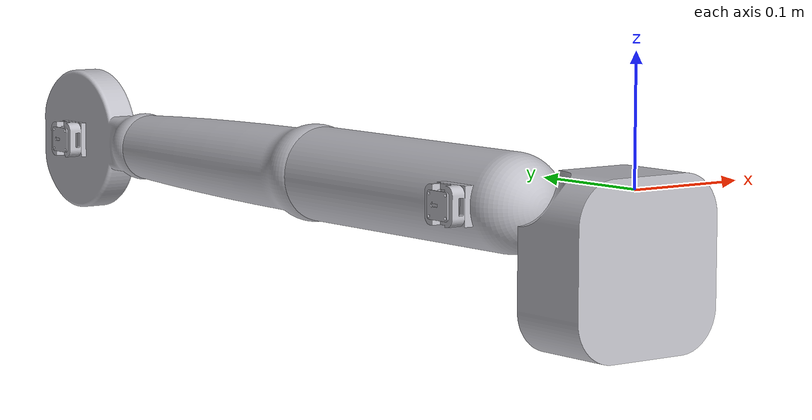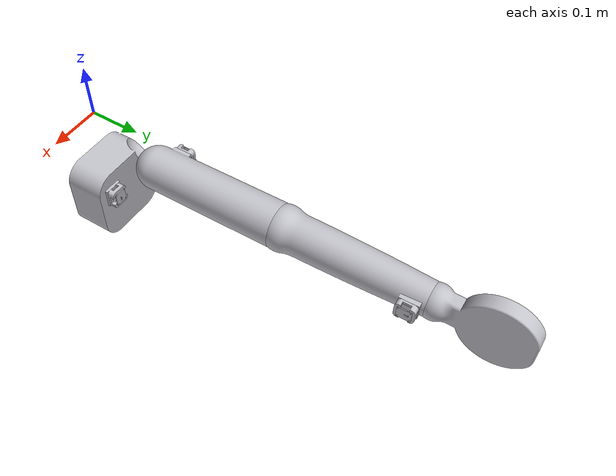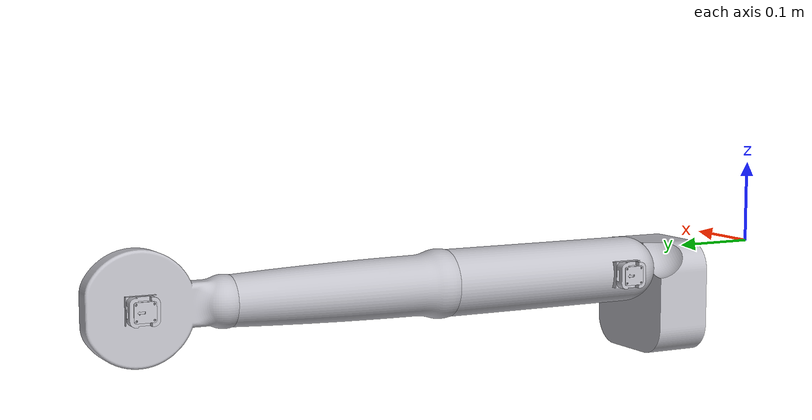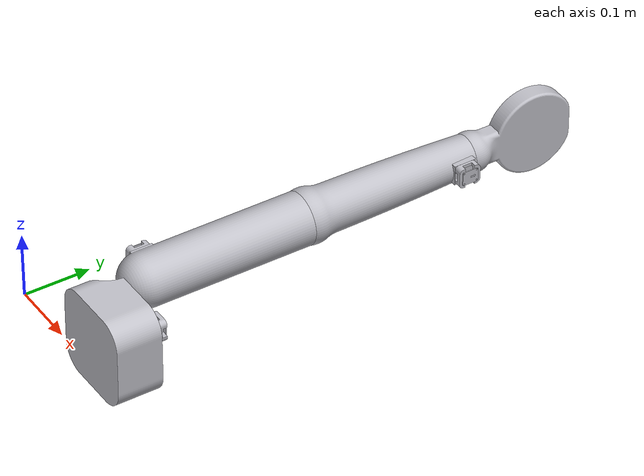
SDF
<sdf version='1.11'>
  <model name='teleoparm'>
    <link name='base_link'>
      <inertial>
        <pose>0.071323104534387269 0.095004139824496209 -0.070700813058979323 0 0 0</pose>
        <mass>10.10063397573283</mass>
        <inertia>
          <ixx>0.01912830571917995</ixx>
          <ixy>-0.00036394579887961959</ixy>
          <ixz>-0.00060401240405721923</ixz>
          <iyy>0.029838568641134679</iyy>
          <iyz>9.4877679500920964e-05</iyz>
          <izz>0.019184964737869761</izz>
        </inertia>
      </inertial>
      <collision name='base_link_collision'>
        <pose>0 0 0 0 0 0</pose>
        <geometry>
          <mesh>
            <scale>0.001 0.001 0.001</scale>
            <uri>package://teleoparm_description/meshes/base_link.stl</uri>
          </mesh>
        </geometry>
        <surface>
          <contact>
            <ode/>
          </contact>
          <friction>
            <ode>
              <mu>0.20000000000000001</mu>
              <mu2>0.20000000000000001</mu2>
            </ode>
          </friction>
        </surface>
      </collision>
      <collision name='base_link_fixed_joint_lump__imumount_v2_1_collision_1'>
        <pose>0 0 0 0 0 0</pose>
        <geometry>
          <mesh>
            <scale>0.001 0.001 0.001</scale>
            <uri>package://teleoparm_description/meshes/imumount_v2_1.stl</uri>
          </mesh>
        </geometry>
        <surface>
          <contact>
            <ode/>
          </contact>
          <friction>
            <ode>
              <mu>0.20000000000000001</mu>
              <mu2>0.20000000000000001</mu2>
            </ode>
          </friction>
        </surface>
      </collision>
      <collision name='base_link_fixed_joint_lump__chestimu_1_collision_2'>
        <pose>0 2.775557561562891e-17 0 0 0 0</pose>
        <geometry>
          <mesh>
            <scale>0.001 0.001 0.001</scale>
            <uri>package://teleoparm_description/meshes/chestimu_1.stl</uri>
          </mesh>
        </geometry>
        <surface>
          <contact>
            <ode/>
          </contact>
          <friction>
            <ode>
              <mu>0.20000000000000001</mu>
              <mu2>0.20000000000000001</mu2>
            </ode>
          </friction>
        </surface>
      </collision>
      <visual name='base_link_visual'>
        <pose>0 0 0 0 0 0</pose>
        <geometry>
          <mesh>
            <scale>0.001 0.001 0.001</scale>
            <uri>package://teleoparm_description/meshes/base_link.stl</uri>
          </mesh>
        </geometry>
        <material>
          <script>
            <name>Gazebo/Silver</name>
            <uri>file://media/materials/scripts/gazebo.material</uri>
          </script>
          <diffuse>0.875 0.875 0.875 1</diffuse>
          <ambient>0.875 0.875 0.875 1</ambient>
        </material>
      </visual>
      <visual name='base_link_fixed_joint_lump__imumount_v2_1_visual_1'>
        <pose>0 0 0 0 0 0</pose>
        <geometry>
          <mesh>
            <scale>0.001 0.001 0.001</scale>
            <uri>package://teleoparm_description/meshes/imumount_v2_1.stl</uri>
          </mesh>
        </geometry>
        <material>
          <script>
            <name>Gazebo/Silver</name>
            <uri>file://media/materials/scripts/gazebo.material</uri>
          </script>
          <diffuse>0.875 0.875 0.875 1</diffuse>
          <ambient>0.875 0.875 0.875 1</ambient>
        </material>
      </visual>
      <visual name='base_link_fixed_joint_lump__chestimu_1_visual_2'>
        <pose>0 2.775557561562891e-17 0 0 0 0</pose>
        <geometry>
          <mesh>
            <scale>0.001 0.001 0.001</scale>
            <uri>package://teleoparm_description/meshes/chestimu_1.stl</uri>
          </mesh>
        </geometry>
        <material>
          <script>
            <name>Gazebo/Silver</name>
            <uri>file://media/materials/scripts/gazebo.material</uri>
          </script>
          <diffuse>0.875 0.875 0.875 1</diffuse>
          <ambient>0.875 0.875 0.875 1</ambient>
        </material>
      </visual>
      <self_collide>true</self_collide>
      <gravity>true</gravity>
      <self_collide>true</self_collide>
      <self_collide>true</self_collide>
    </link>
    <joint name='shldrevolute_roll' type='revolute'>
      <pose relative_to='base_link'>0.026568000000000001 0.11627999999999999 -0.026568000000000001 0 0 0</pose>
      <parent>base_link</parent>
      <child>shldr_virtual_1</child>
      <axis>
        <xyz>1 0 0</xyz>
        <limit>
          <lower>-inf</lower>
          <upper>inf</upper>
        </limit>
        <dynamics>
          <spring_reference>0</spring_reference>
          <spring_stiffness>0</spring_stiffness>
        </dynamics>
      </axis>
    </joint>
    <link name='shldr_virtual_1'>
      <pose relative_to='shldrevolute_roll'>0 0 0 0 0 0</pose>
      <inertial>
        <pose>0 0 0 0 0 0</pose>
        <mass>0.001</mass>
        <inertia>
          <ixx>0.0001</ixx>
          <ixy>0</ixy>
          <ixz>0</ixz>
          <iyy>0.0001</iyy>
          <iyz>0</iyz>
          <izz>0.0001</izz>
        </inertia>
      </inertial>
    </link>
    <joint name='shldrevolute_pitch' type='revolute'>
      <pose relative_to='shldr_virtual_1'>0 0 0 0 0 0</pose>
      <parent>shldr_virtual_1</parent>
      <child>shldr_virtual_2</child>
      <axis>
        <xyz>0 1 0</xyz>
        <limit>
          <lower>-inf</lower>
          <upper>inf</upper>
        </limit>
        <dynamics>
          <spring_reference>0</spring_reference>
          <spring_stiffness>0</spring_stiffness>
        </dynamics>
      </axis>
    </joint>
    <link name='shldr_virtual_2'>
      <pose relative_to='shldrevolute_pitch'>0 0 0 0 0 0</pose>
      <inertial>
        <pose>0 0 0 0 0 0</pose>
        <mass>0.001</mass>
        <inertia>
          <ixx>0.0001</ixx>
          <ixy>0</ixy>
          <ixz>0</ixz>
          <iyy>0.0001</iyy>
          <iyz>0</iyz>
          <izz>0.0001</izz>
        </inertia>
      </inertial>
    </link>
    <joint name='shldrevolute_yaw' type='revolute'>
      <pose relative_to='shldr_virtual_2'>0 0 0 0 0 0</pose>
      <parent>shldr_virtual_2</parent>
      <child>arm_1</child>
      <axis>
        <xyz>0 0 1</xyz>
        <limit>
          <lower>-inf</lower>
          <upper>inf</upper>
        </limit>
        <dynamics>
          <spring_reference>0</spring_reference>
          <spring_stiffness>0</spring_stiffness>
        </dynamics>
      </axis>
    </joint>
    <link name='arm_1'>
      <pose relative_to='shldrevolute_yaw'>0 0 0 0 0 0</pose>
      <inertial>
        <pose>-0.09399375584331135 0.048031150541781038 0.09399415196704311 0 0 0</pose>
        <mass>10.27422537981764</mass>
        <inertia>
          <ixx>0.03850110786075768</ixx>
          <ixy>0.01240494855191491</ixy>
          <ixz>0.023591778077546349</ixz>
          <iyy>0.055319556181065398</iyy>
          <iyz>-0.0124048605543684</iyz>
          <izz>0.038501202261441853</izz>
        </inertia>
      </inertial>
      <collision name='arm_1_collision'>
        <pose>-0.026568000000000001 -0.11627999999999999 0.026568000000000001 0 0 0</pose>
        <geometry>
          <mesh>
            <scale>0.001 0.001 0.001</scale>
            <uri>package://teleoparm_description/meshes/arm_1.stl</uri>
          </mesh>
        </geometry>
        <surface>
          <contact>
            <ode/>
          </contact>
          <friction>
            <ode>
              <mu>0.20000000000000001</mu>
              <mu2>0.20000000000000001</mu2>
            </ode>
          </friction>
        </surface>
      </collision>
      <collision name='arm_1_fixed_joint_lump__imumount_v2__1__1_collision_1'>
        <pose>-0.026568000000000001 -0.11627999999999999 0.026568000000000001 0 0 0</pose>
        <geometry>
          <mesh>
            <scale>0.001 0.001 0.001</scale>
            <uri>package://teleoparm_description/meshes/imumount_v2__1__1.stl</uri>
          </mesh>
        </geometry>
        <surface>
          <contact>
            <ode/>
          </contact>
          <friction>
            <ode>
              <mu>0.20000000000000001</mu>
              <mu2>0.20000000000000001</mu2>
            </ode>
          </friction>
        </surface>
      </collision>
      <collision name='arm_1_fixed_joint_lump__armimu_1_collision_2'>
        <pose>-0.026568000000000001 -0.11627999999999999 0.026568000000000001 0 0 0</pose>
        <geometry>
          <mesh>
            <scale>0.001 0.001 0.001</scale>
            <uri>package://teleoparm_description/meshes/armimu_1.stl</uri>
          </mesh>
        </geometry>
        <surface>
          <contact>
            <ode/>
          </contact>
          <friction>
            <ode>
              <mu>0.20000000000000001</mu>
              <mu2>0.20000000000000001</mu2>
            </ode>
          </friction>
        </surface>
      </collision>
      <visual name='arm_1_visual'>
        <pose>-0.026568000000000001 -0.11627999999999999 0.026568000000000001 0 0 0</pose>
        <geometry>
          <mesh>
            <scale>0.001 0.001 0.001</scale>
            <uri>package://teleoparm_description/meshes/arm_1.stl</uri>
          </mesh>
        </geometry>
        <material>
          <script>
            <name>Gazebo/Silver</name>
            <uri>file://media/materials/scripts/gazebo.material</uri>
          </script>
          <diffuse>0.875 0.875 0.875 1</diffuse>
          <ambient>0.875 0.875 0.875 1</ambient>
        </material>
      </visual>
      <visual name='arm_1_fixed_joint_lump__imumount_v2__1__1_visual_1'>
        <pose>-0.026568000000000001 -0.11627999999999999 0.026568000000000001 0 0 0</pose>
        <geometry>
          <mesh>
            <scale>0.001 0.001 0.001</scale>
            <uri>package://teleoparm_description/meshes/imumount_v2__1__1.stl</uri>
          </mesh>
        </geometry>
        <material>
          <script>
            <name>Gazebo/Silver</name>
            <uri>file://media/materials/scripts/gazebo.material</uri>
          </script>
          <diffuse>0.875 0.875 0.875 1</diffuse>
          <ambient>0.875 0.875 0.875 1</ambient>
        </material>
      </visual>
      <visual name='arm_1_fixed_joint_lump__armimu_1_visual_2'>
        <pose>-0.026568000000000001 -0.11627999999999999 0.026568000000000001 0 0 0</pose>
        <geometry>
          <mesh>
            <scale>0.001 0.001 0.001</scale>
            <uri>package://teleoparm_description/meshes/armimu_1.stl</uri>
          </mesh>
        </geometry>
        <material>
          <script>
            <name>Gazebo/Silver</name>
            <uri>file://media/materials/scripts/gazebo.material</uri>
          </script>
          <diffuse>0.875 0.875 0.875 1</diffuse>
          <ambient>0.875 0.875 0.875 1</ambient>
        </material>
      </visual>
      <self_collide>true</self_collide>
      <self_collide>true</self_collide>
      <self_collide>true</self_collide>
    </link>
    <joint name='elbowrevolute_roll' type='revolute'>
      <pose relative_to='arm_1'>-0.17177799999999999 0.088751999999999998 0.171956 0 0 0</pose>
      <parent>arm_1</parent>
      <child>elbow_virtual_1</child>
      <axis>
        <xyz>1 0 0</xyz>
        <limit>
          <lower>-inf</lower>
          <upper>inf</upper>
        </limit>
        <dynamics>
          <spring_reference>0</spring_reference>
          <spring_stiffness>0</spring_stiffness>
        </dynamics>
      </axis>
    </joint>
    <link name='elbow_virtual_1'>
      <pose relative_to='elbowrevolute_roll'>0 0 0 0 0 0</pose>
      <inertial>
        <pose>0 0 0 0 0 0</pose>
        <mass>0.001</mass>
        <inertia>
          <ixx>0.0001</ixx>
          <ixy>0</ixy>
          <ixz>0</ixz>
          <iyy>0.0001</iyy>
          <iyz>0</iyz>
          <izz>0.0001</izz>
        </inertia>
      </inertial>
    </link>
    <joint name='elbowrevolute_pitch' type='revolute'>
      <pose relative_to='elbow_virtual_1'>0 0 0 0 0 0</pose>
      <parent>elbow_virtual_1</parent>
      <child>elbow_virtual_2</child>
      <axis>
        <xyz>0 1 0</xyz>
        <limit>
          <lower>-inf</lower>
          <upper>inf</upper>
        </limit>
        <dynamics>
          <spring_reference>0</spring_reference>
          <spring_stiffness>0</spring_stiffness>
        </dynamics>
      </axis>
    </joint>
    <link name='elbow_virtual_2'>
      <pose relative_to='elbowrevolute_pitch'>0 0 0 0 0 0</pose>
      <inertial>
        <pose>0 0 0 0 0 0</pose>
        <mass>0.001</mass>
        <inertia>
          <ixx>0.0001</ixx>
          <ixy>0</ixy>
          <ixz>0</ixz>
          <iyy>0.0001</iyy>
          <iyz>0</iyz>
          <izz>0.0001</izz>
        </inertia>
      </inertial>
    </link>
    <joint name='elbowrevolute_yaw' type='revolute'>
      <pose relative_to='elbow_virtual_2'>0 0 0 0 0 0</pose>
      <parent>elbow_virtual_2</parent>
      <child>elbow_1</child>
      <axis>
        <xyz>0 0 1</xyz>
        <limit>
          <lower>-inf</lower>
          <upper>inf</upper>
        </limit>
        <dynamics>
          <spring_reference>0</spring_reference>
          <spring_stiffness>0</spring_stiffness>
        </dynamics>
      </axis>
    </joint>
    <link name='elbow_1'>
      <pose relative_to='elbowrevolute_yaw'>0 0 0 0 0 0</pose>
      <inertial>
        <pose>-0.093155418499580964 0.048553310815923727 0.092976980914266427 0 0 0</pose>
        <mass>8.5554394046482649</mass>
        <inertia>
          <ixx>0.035995934972495022</ixx>
          <ixy>0.0126834800821343</ixy>
          <ixz>0.023858825586234391</ixz>
          <iyy>0.052972651187040309</iyy>
          <iyz>-0.01268340538678212</iyz>
          <izz>0.035996077151798297</izz>
        </inertia>
      </inertial>
      <collision name='elbow_1_collision'>
        <pose>0.14521000000000001 -0.20503199999999999 -0.14538799999999999 0 0 0</pose>
        <geometry>
          <mesh>
            <scale>0.001 0.001 0.001</scale>
            <uri>package://teleoparm_description/meshes/elbow_1.stl</uri>
          </mesh>
        </geometry>
        <surface>
          <contact>
            <ode/>
          </contact>
          <friction>
            <ode>
              <mu>0.20000000000000001</mu>
              <mu2>0.20000000000000001</mu2>
            </ode>
          </friction>
        </surface>
      </collision>
      <collision name='elbow_1_fixed_joint_lump__imumount_v2__2__1_collision_1'>
        <pose>0.14521000000000001 -0.20503199999999999 -0.14538799999999999 0 0 0</pose>
        <geometry>
          <mesh>
            <scale>0.001 0.001 0.001</scale>
            <uri>package://teleoparm_description/meshes/imumount_v2__2__1.stl</uri>
          </mesh>
        </geometry>
        <surface>
          <contact>
            <ode/>
          </contact>
          <friction>
            <ode>
              <mu>0.20000000000000001</mu>
              <mu2>0.20000000000000001</mu2>
            </ode>
          </friction>
        </surface>
      </collision>
      <collision name='elbow_1_fixed_joint_lump__elbowimu_1_collision_2'>
        <pose>0.14521000000000001 -0.20503199999999999 -0.14538799999999999 0 0 0</pose>
        <geometry>
          <mesh>
            <scale>0.001 0.001 0.001</scale>
            <uri>package://teleoparm_description/meshes/elbowimu_1.stl</uri>
          </mesh>
        </geometry>
        <surface>
          <contact>
            <ode/>
          </contact>
          <friction>
            <ode>
              <mu>0.20000000000000001</mu>
              <mu2>0.20000000000000001</mu2>
            </ode>
          </friction>
        </surface>
      </collision>
      <visual name='elbow_1_visual'>
        <pose>0.14521000000000001 -0.20503199999999999 -0.14538799999999999 0 0 0</pose>
        <geometry>
          <mesh>
            <scale>0.001 0.001 0.001</scale>
            <uri>package://teleoparm_description/meshes/elbow_1.stl</uri>
          </mesh>
        </geometry>
        <material>
          <script>
            <name>Gazebo/Silver</name>
            <uri>file://media/materials/scripts/gazebo.material</uri>
          </script>
          <diffuse>0.875 0.875 0.875 1</diffuse>
          <ambient>0.875 0.875 0.875 1</ambient>
        </material>
      </visual>
      <visual name='elbow_1_fixed_joint_lump__imumount_v2__2__1_visual_1'>
        <pose>0.14521000000000001 -0.20503199999999999 -0.14538799999999999 0 0 0</pose>
        <geometry>
          <mesh>
            <scale>0.001 0.001 0.001</scale>
            <uri>package://teleoparm_description/meshes/imumount_v2__2__1.stl</uri>
          </mesh>
        </geometry>
        <material>
          <script>
            <name>Gazebo/Silver</name>
            <uri>file://media/materials/scripts/gazebo.material</uri>
          </script>
          <diffuse>0.875 0.875 0.875 1</diffuse>
          <ambient>0.875 0.875 0.875 1</ambient>
        </material>
      </visual>
      <visual name='elbow_1_fixed_joint_lump__elbowimu_1_visual_2'>
        <pose>0.14521000000000001 -0.20503199999999999 -0.14538799999999999 0 0 0</pose>
        <geometry>
          <mesh>
            <scale>0.001 0.001 0.001</scale>
            <uri>package://teleoparm_description/meshes/elbowimu_1.stl</uri>
          </mesh>
        </geometry>
        <material>
          <script>
            <name>Gazebo/Silver</name>
            <uri>file://media/materials/scripts/gazebo.material</uri>
          </script>
          <diffuse>0.875 0.875 0.875 1</diffuse>
          <ambient>0.875 0.875 0.875 1</ambient>
        </material>
      </visual>
      <self_collide>true</self_collide>
      <self_collide>true</self_collide>
      <self_collide>true</self_collide>
    </link>
    <joint name='wristrevolute_roll' type='revolute'>
      <pose relative_to='elbow_1'>-0.18656300000000001 0.096295000000000006 0.186385 0 0 0</pose>
      <parent>elbow_1</parent>
      <child>wrist_virtual_1</child>
      <axis>
        <xyz>1 0 0</xyz>
        <limit>
          <lower>-inf</lower>
          <upper>inf</upper>
        </limit>
        <dynamics>
          <spring_reference>0</spring_reference>
          <spring_stiffness>0</spring_stiffness>
        </dynamics>
      </axis>
    </joint>
    <link name='wrist_virtual_1'>
      <pose relative_to='wristrevolute_roll'>0 0 0 0 0 0</pose>
      <inertial>
        <pose>0 0 0 0 0 0</pose>
        <mass>0.001</mass>
        <inertia>
          <ixx>0.0001</ixx>
          <ixy>0</ixy>
          <ixz>0</ixz>
          <iyy>0.0001</iyy>
          <iyz>0</iyz>
          <izz>0.0001</izz>
        </inertia>
      </inertial>
    </link>
    <joint name='wristrevolute_pitch' type='revolute'>
      <pose relative_to='wrist_virtual_1'>0 0 0 0 0 0</pose>
      <parent>wrist_virtual_1</parent>
      <child>wrist_virtual_2</child>
      <axis>
        <xyz>0 1 0</xyz>
        <limit>
          <lower>-inf</lower>
          <upper>inf</upper>
        </limit>
        <dynamics>
          <spring_reference>0</spring_reference>
          <spring_stiffness>0</spring_stiffness>
        </dynamics>
      </axis>
    </joint>
    <link name='wrist_virtual_2'>
      <pose relative_to='wristrevolute_pitch'>0 0 0 0 0 0</pose>
      <inertial>
        <pose>0 0 0 0 0 0</pose>
        <mass>0.001</mass>
        <inertia>
          <ixx>0.0001</ixx>
          <ixy>0</ixy>
          <ixz>0</ixz>
          <iyy>0.0001</iyy>
          <iyz>0</iyz>
          <izz>0.0001</izz>
        </inertia>
      </inertial>
    </link>
    <joint name='wristrevolute_yaw' type='revolute'>
      <pose relative_to='wrist_virtual_2'>0 0 0 0 0 0</pose>
      <parent>wrist_virtual_2</parent>
      <child>wrist_1</child>
      <axis>
        <xyz>0 0 1</xyz>
        <limit>
          <lower>-inf</lower>
          <upper>inf</upper>
        </limit>
        <dynamics>
          <spring_reference>0</spring_reference>
          <spring_stiffness>0</spring_stiffness>
        </dynamics>
      </axis>
    </joint>
    <link name='wrist_1'>
      <pose relative_to='wristrevolute_yaw'>0 0 0 0 0 0</pose>
      <inertial>
        <pose>-0.069485506257845372 0.035339037412534968 0.069495872033038919 0 0 0</pose>
        <mass>4.0305752109982453</mass>
        <inertia>
          <ixx>0.0077954945266459283</ixx>
          <ixy>0.0022304121474776041</ixy>
          <ixz>0.0029595360855145391</ixz>
          <iyy>0.012490081723772519</iyy>
          <iyz>-0.0022300694993565352</iyz>
          <izz>0.0077934504095340416</izz>
        </inertia>
      </inertial>
      <collision name='wrist_1_collision'>
        <pose>0.33177299999999998 -0.30132700000000001 -0.33177299999999998 0 0 0</pose>
        <geometry>
          <mesh>
            <scale>0.001 0.001 0.001</scale>
            <uri>package://teleoparm_description/meshes/wrist_1.stl</uri>
          </mesh>
        </geometry>
        <surface>
          <contact>
            <ode/>
          </contact>
          <friction>
            <ode>
              <mu>0.20000000000000001</mu>
              <mu2>0.20000000000000001</mu2>
            </ode>
          </friction>
        </surface>
      </collision>
      <collision name='wrist_1_fixed_joint_lump__imumount_v2__3__1_collision_1'>
        <pose>0.33177299999999998 -0.30132700000000001 -0.33177299999999998 0 0 0</pose>
        <geometry>
          <mesh>
            <scale>0.001 0.001 0.001</scale>
            <uri>package://teleoparm_description/meshes/imumount_v2__3__1.stl</uri>
          </mesh>
        </geometry>
        <surface>
          <contact>
            <ode/>
          </contact>
          <friction>
            <ode>
              <mu>0.20000000000000001</mu>
              <mu2>0.20000000000000001</mu2>
            </ode>
          </friction>
        </surface>
      </collision>
      <collision name='wrist_1_fixed_joint_lump__wristimu_1_collision_2'>
        <pose>0.33177299999999998 -0.30132700000000001 -0.33177299999999998 0 0 0</pose>
        <geometry>
          <mesh>
            <scale>0.001 0.001 0.001</scale>
            <uri>package://teleoparm_description/meshes/wristimu_1.stl</uri>
          </mesh>
        </geometry>
        <surface>
          <contact>
            <ode/>
          </contact>
          <friction>
            <ode>
              <mu>0.20000000000000001</mu>
              <mu2>0.20000000000000001</mu2>
            </ode>
          </friction>
        </surface>
      </collision>
      <visual name='wrist_1_visual'>
        <pose>0.33177299999999998 -0.30132700000000001 -0.33177299999999998 0 0 0</pose>
        <geometry>
          <mesh>
            <scale>0.001 0.001 0.001</scale>
            <uri>package://teleoparm_description/meshes/wrist_1.stl</uri>
          </mesh>
        </geometry>
        <material>
          <script>
            <name>Gazebo/Silver</name>
            <uri>file://media/materials/scripts/gazebo.material</uri>
          </script>
          <diffuse>0.875 0.875 0.875 1</diffuse>
          <ambient>0.875 0.875 0.875 1</ambient>
        </material>
      </visual>
      <visual name='wrist_1_fixed_joint_lump__imumount_v2__3__1_visual_1'>
        <pose>0.33177299999999998 -0.30132700000000001 -0.33177299999999998 0 0 0</pose>
        <geometry>
          <mesh>
            <scale>0.001 0.001 0.001</scale>
            <uri>package://teleoparm_description/meshes/imumount_v2__3__1.stl</uri>
          </mesh>
        </geometry>
        <material>
          <script>
            <name>Gazebo/Silver</name>
            <uri>file://media/materials/scripts/gazebo.material</uri>
          </script>
          <diffuse>0.875 0.875 0.875 1</diffuse>
          <ambient>0.875 0.875 0.875 1</ambient>
        </material>
      </visual>
      <visual name='wrist_1_fixed_joint_lump__wristimu_1_visual_2'>
        <pose>0.33177299999999998 -0.30132700000000001 -0.33177299999999998 0 0 0</pose>
        <geometry>
          <mesh>
            <scale>0.001 0.001 0.001</scale>
            <uri>package://teleoparm_description/meshes/wristimu_1.stl</uri>
          </mesh>
        </geometry>
        <material>
          <script>
            <name>Gazebo/Silver</name>
            <uri>file://media/materials/scripts/gazebo.material</uri>
          </script>
          <diffuse>0.875 0.875 0.875 1</diffuse>
          <ambient>0.875 0.875 0.875 1</ambient>
        </material>
      </visual>
      <self_collide>true</self_collide>
      <self_collide>true</self_collide>
      <self_collide>true</self_collide>
    </link>
    <plugin name='control' filename='libgazebo_ros_control.so'/>
    <frame name='chestimu' attached_to='imumount_v2_1'>
      <pose>0 0.012 0 0 0 0</pose>
    </frame>
    <frame name='chestimu_1' attached_to='chestimu'>
      <pose>0 0 0 0 0 0</pose>
    </frame>
    <frame name='Rigid 6' attached_to='base_link'>
      <pose>0.109 0.13500000000000001 -0.042500000000000003 0 0 0</pose>
    </frame>
    <frame name='imumount_v2_1' attached_to='Rigid 6'>
      <pose>0 0 0 0 0 0</pose>
    </frame>
    <frame name='armimu' attached_to='imumount_v2__1__1'>
      <pose>-0.002911 -0.011272000000000001 0.0029099999999999998 0 0 0</pose>
    </frame>
    <frame name='armimu_1' attached_to='armimu'>
      <pose>0 0 0 0 0 0</pose>
    </frame>
    <frame name='Rigid 7' attached_to='arm_1'>
      <pose>-0.051078999999999999 -0.021523 0.051102000000000002 0 0 0</pose>
    </frame>
    <frame name='imumount_v2__1__1' attached_to='Rigid 7'>
      <pose>0 0 0 0 0 0</pose>
    </frame>
    <frame name='elbowimu' attached_to='imumount_v2__2__1'>
      <pose>0.0029099999999999998 0.011272000000000001 -0.0029099999999999998 0 0 0</pose>
    </frame>
    <frame name='elbowimu_1' attached_to='elbowimu'>
      <pose>0 0 0 0 0 0</pose>
    </frame>
    <frame name='Rigid 8' attached_to='elbow_1'>
      <pose>-0.177589 0.12829099999999999 0.177394 0 0 0</pose>
    </frame>
    <frame name='imumount_v2__2__1' attached_to='Rigid 8'>
      <pose>0 0 0 0 0 0</pose>
    </frame>
    <frame name='wristimu' attached_to='imumount_v2__3__1'>
      <pose>-0.002911 -0.011272000000000001 0.002911 0 0 0</pose>
    </frame>
    <frame name='wristimu_1' attached_to='wristimu'>
      <pose>0 0 0 0 0 0</pose>
    </frame>
    <frame name='Rigid 9' attached_to='wrist_1'>
      <pose>-0.091066999999999995 0.026914 0.091508999999999993 0 0 0</pose>
    </frame>
    <frame name='imumount_v2__3__1' attached_to='Rigid 9'>
      <pose>0 0 0 0 0 0</pose>
    </frame>
  </model>
</sdf>
